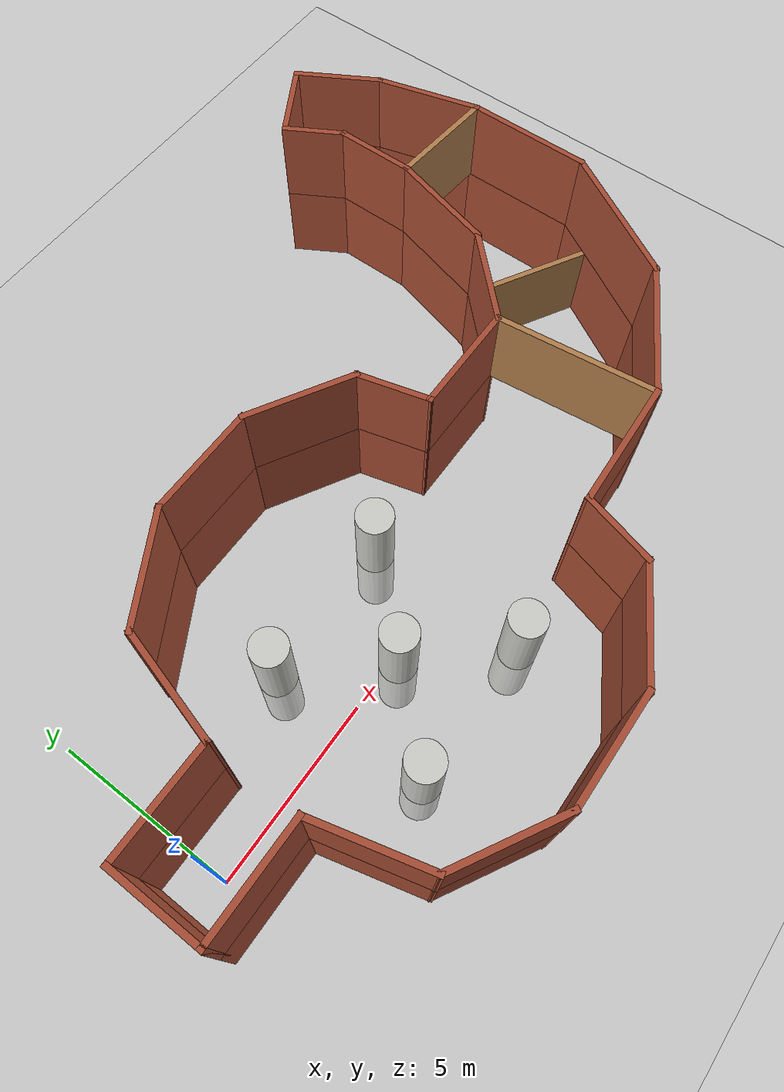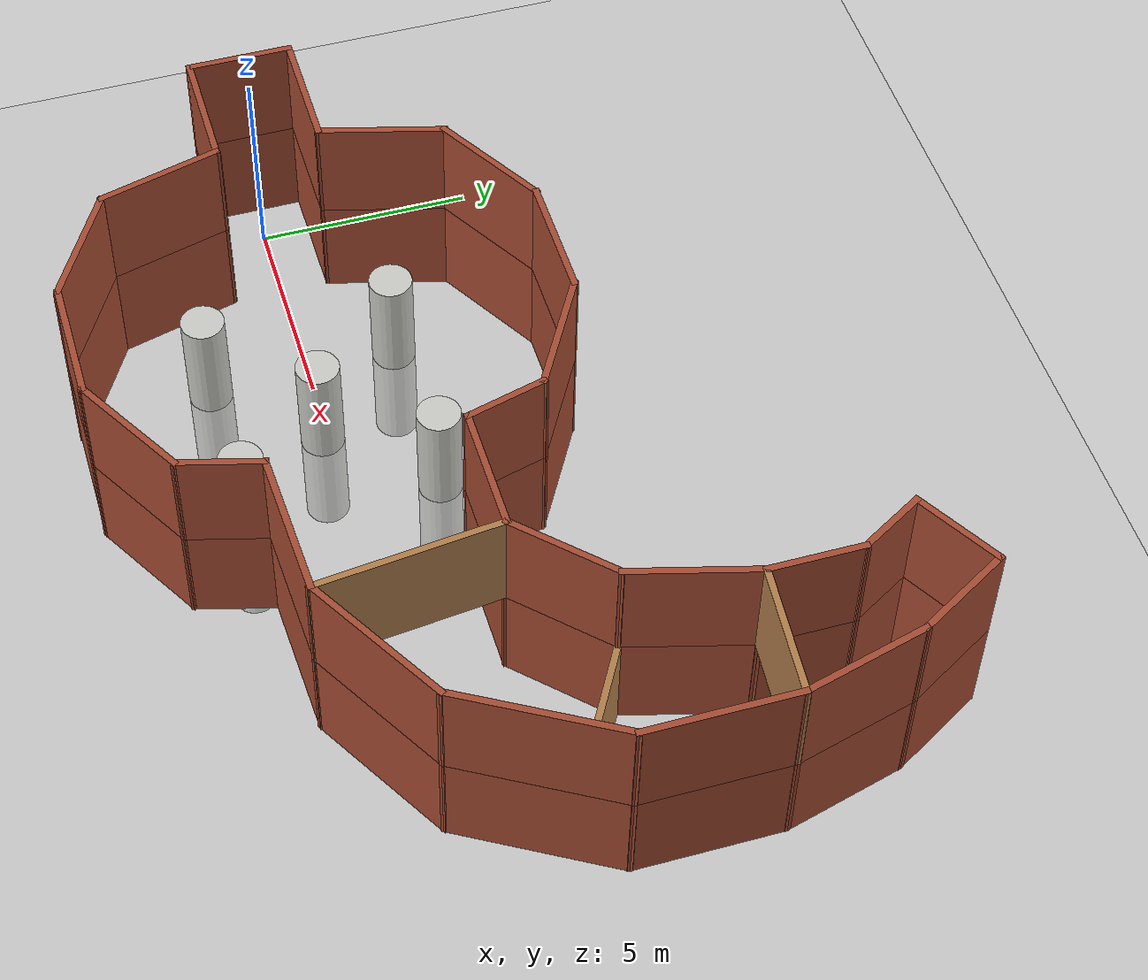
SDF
<?xml version="1.0" ?>
<sdf version="1.5">
  <world name="world_1">
    <!-- A global light source -->
    <include>
      <uri>model://sun</uri>
    </include>
    <!-- A ground plane -->
    <include>
      <uri>model://ground_plane</uri>
    </include>
    <include>
      <uri>model://asphalt_plane</uri>
    </include>
    <!-- ArUco Marker -->
    <include>
      <uri>model://aruco_visual_marker_0</uri>
      <pose>16.874 9.845 0.055 0 0 2.106</pose>
    </include>
    <!-- Obstacles -->
    <include>
      <uri>model://walls_2</uri>
      <pose>9.05 2.952 0 0 0 0.0</pose>
    </include>
    <include>
      <uri>model://obstacles_2</uri>
      <pose>6.5 -0.127 0 0 0 0.0</pose>
    </include>
    <physics name='default_physics' default='0' type='ode'>
      <gravity>0 0 -9.8066</gravity>
      <ode>
        <solver>
          <type>quick</type>
          <iters>10</iters>
          <sor>1.3</sor>
          <use_dynamic_moi_rescaling>0</use_dynamic_moi_rescaling>
        </solver>
        <constraints>
          <cfm>0</cfm>
          <erp>0.2</erp>
          <contact_max_correcting_vel>100</contact_max_correcting_vel>
          <contact_surface_layer>0.001</contact_surface_layer>
        </constraints>
      </ode>
      <max_step_size>0.004</max_step_size>
      <real_time_factor>1</real_time_factor>
      <real_time_update_rate>250</real_time_update_rate>
      <magnetic_field>6.0e-6 2.3e-5 -4.2e-5</magnetic_field>
    </physics>
  </world>
</sdf>

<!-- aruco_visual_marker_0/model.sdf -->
<sdf version='1.5'>
  <model name='aruco_visual_marker_0'>

    <link name='marker'>
      <pose frame=''>0 0 0 0 0 0</pose>
      <visual name='visual'>
        <geometry>
          <box>
            <size>1 1 1e-5</size>
          </box>
        </geometry>
        <material>
          <script>
            <uri>model://aruco_visual_marker_0/materials/scripts</uri>
            <uri>model://aruco_visual_marker_0/materials/textures</uri>
            <name>ArucoVisualMarker0/Marker</name>
          </script>
          <ambient>1 1 1 1</ambient>
          <diffuse>1 1 1 1</diffuse>
          <specular>0 0 0 1</specular>
          <emissive>1 1 1 0</emissive>
          <shader type='vertex'>
            <normal_map>__default__</normal_map>
          </shader>
        </material>
        <pose frame=''>0 0 0 0 -0 0</pose>
        <cast_shadows>1</cast_shadows>
        <transparency>0</transparency>
      </visual>
      <collision name='collision'>
        <laser_retro>0</laser_retro>
        <max_contacts>10</max_contacts>
        <pose frame=''>0 0 0 0 -0 0</pose>
        <geometry>
          <box>
            <size>1 1 1e-05</size>
          </box>
        </geometry>
      </collision>
    </link>

    <link name='marker_pad'>
      <pose frame='marker'>0 0 -1e-3 0 -0 0</pose>
      <visual name='visual'>
        <geometry>
          <box>
            <size>1.2 1.2 1e-5</size>
          </box>
        </geometry>
        <material>
          <lighting>1</lighting>
          <script>
            <uri>file://media/materials/scripts/gazebo.material</uri>
            <name>Gazebo/White</name>
          </script>
          <ambient>0.3 0.3 0.3 1</ambient>
          <diffuse>0.7 0.7 0.7 1</diffuse>
          <specular>0.01 0.01 0.01 1</specular>
          <emissive>1 1 1 0</emissive>
          <shader type='vertex'>
            <normal_map>__default__</normal_map>
          </shader>
        </material>
        <cast_shadows>1</cast_shadows>
        <transparency>0</transparency>
      </visual>
      <collision name='collision'>
        <laser_retro>0</laser_retro>
        <max_contacts>10</max_contacts>
        <pose frame=''>0 0 0 0 -0 0</pose>
        <geometry>
          <box>
            <size>1.2 1.2 1e-5</size>
          </box>
        </geometry>
      </collision>
    </link>

    <joint name='marker_JOINT_marker_pad' type='revolute'>
      <parent>marker</parent>
      <child>marker_pad</child>
      <pose frame=''>0 0 0 0 -0 0</pose>
      <axis>
        <xyz>0 0 0</xyz>
        <limit>
          <upper>0</upper>
          <lower>0</lower>
        </limit>
      </axis>
    </joint>

    <static>1</static>
    <allow_auto_disable>1</allow_auto_disable>

  </model>
</sdf>

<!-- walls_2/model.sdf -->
<sdf version='1.7'>
  <model name='walls_2'>
    <pose>8.92882 2.76252 0 0 -0 0</pose>
    <link name='Wall_0'>
      <collision name='Wall_0_Collision'>
        <geometry>
          <box>
            <size>2.5 0.15 2.5</size>
          </box>
        </geometry>
        <pose>0 0 1.25 0 -0 0</pose>
      </collision>
      <visual name='Wall_0_Visual'>
        <pose>0 0 1.25 0 -0 0</pose>
        <geometry>
          <box>
            <size>2.5 0.15 2.5</size>
          </box>
        </geometry>
        <material>
          <script>
            <uri>file://media/materials/scripts/gazebo.material</uri>
            <name>Gazebo/Bricks</name>
          </script>
          <ambient>1 1 1 1</ambient>
        </material>
        <meta>
          <layer>0</layer>
        </meta>
      </visual>
      <pose>-10.1188 -2.95752 0 0 -0 -1.5708</pose>
    </link>
    <link name='Wall_10'>
      <collision name='Wall_10_Collision'>
        <geometry>
          <box>
            <size>2 0.15 2.5</size>
          </box>
        </geometry>
        <pose>0 0 1.25 0 -0 0</pose>
      </collision>
      <visual name='Wall_10_Visual'>
        <pose>0 0 1.25 0 -0 0</pose>
        <geometry>
          <box>
            <size>2 0.15 2.5</size>
          </box>
        </geometry>
        <material>
          <script>
            <uri>file://media/materials/scripts/gazebo.material</uri>
            <name>Gazebo/Bricks</name>
          </script>
          <ambient>1 1 1 1</ambient>
        </material>
        <meta>
          <layer>0</layer>
        </meta>
      </visual>
      <pose>1.49456 0.076885 0 0 -0 -1.309</pose>
    </link>
    <link name='Wall_12'>
      <collision name='Wall_12_Collision'>
        <geometry>
          <box>
            <size>3 0.15 2.5</size>
          </box>
        </geometry>
        <pose>0 0 1.25 0 -0 0</pose>
      </collision>
      <visual name='Wall_12_Visual'>
        <pose>0 0 1.25 0 -0 0</pose>
        <geometry>
          <box>
            <size>3 0.15 2.5</size>
          </box>
        </geometry>
        <material>
          <script>
            <uri>file://media/materials/scripts/gazebo.material</uri>
            <name>Gazebo/Bricks</name>
          </script>
          <ambient>1 1 1 1</ambient>
        </material>
        <meta>
          <layer>0</layer>
        </meta>
      </visual>
      <pose>-6.90001 -5.50897 0 0 -0 -1.309</pose>
    </link>
    <link name='Wall_13'>
      <collision name='Wall_13_Collision'>
        <geometry>
          <box>
            <size>3 0.15 2.5</size>
          </box>
        </geometry>
        <pose>0 0 1.25 0 -0 0</pose>
      </collision>
      <visual name='Wall_13_Visual'>
        <pose>0 0 1.25 0 -0 0</pose>
        <geometry>
          <box>
            <size>3 0.15 2.5</size>
          </box>
        </geometry>
        <material>
          <script>
            <uri>file://media/materials/scripts/gazebo.material</uri>
            <name>Gazebo/Bricks</name>
          </script>
          <ambient>1 1 1 1</ambient>
        </material>
        <meta>
          <layer>0</layer>
        </meta>
      </visual>
      <pose>-5.2971 -7.59791 0 0 -0 -0.523599</pose>
    </link>
    <link name='Wall_14'>
      <collision name='Wall_14_Collision'>
        <geometry>
          <box>
            <size>3 0.15 2.5</size>
          </box>
        </geometry>
        <pose>0 0 1.25 0 -0 0</pose>
      </collision>
      <visual name='Wall_14_Visual'>
        <pose>0 0 1.25 0 -0 0</pose>
        <geometry>
          <box>
            <size>3 0.15 2.5</size>
          </box>
        </geometry>
        <material>
          <script>
            <uri>file://media/materials/scripts/gazebo.material</uri>
            <name>Gazebo/Bricks</name>
          </script>
          <ambient>1 1 1 1</ambient>
        </material>
        <meta>
          <layer>0</layer>
        </meta>
      </visual>
      <pose>-2.63802 -8.31041 0 0 -0 0</pose>
    </link>
    <link name='Wall_15'>
      <collision name='Wall_15_Collision'>
        <geometry>
          <box>
            <size>3 0.15 2.5</size>
          </box>
        </geometry>
        <pose>0 0 1.25 0 -0 0</pose>
      </collision>
      <visual name='Wall_15_Visual'>
        <pose>0 0 1.25 0 -0 0</pose>
        <geometry>
          <box>
            <size>3 0.15 2.5</size>
          </box>
        </geometry>
        <material>
          <script>
            <uri>file://media/materials/scripts/gazebo.material</uri>
            <name>Gazebo/Bricks</name>
          </script>
          <ambient>1 1 1 1</ambient>
        </material>
        <meta>
          <layer>0</layer>
        </meta>
      </visual>
      <pose>0.02107 -7.59791 0 0 -0 0.523599</pose>
    </link>
    <link name='Wall_16'>
      <collision name='Wall_16_Collision'>
        <geometry>
          <box>
            <size>2 0.15 2.5</size>
          </box>
        </geometry>
        <pose>0 0 1.25 0 -0 0</pose>
      </collision>
      <visual name='Wall_16_Visual'>
        <pose>0 0 1.25 0 -0 0</pose>
        <geometry>
          <box>
            <size>2 0.15 2.5</size>
          </box>
        </geometry>
        <material>
          <script>
            <uri>file://media/materials/scripts/gazebo.material</uri>
            <name>Gazebo/Bricks</name>
          </script>
          <ambient>1 1 1 1</ambient>
        </material>
        <meta>
          <layer>0</layer>
        </meta>
      </visual>
      <pose>1.49456 -5.99193 0 0 -0 1.309</pose>
    </link>
    <link name='Wall_18'>
      <collision name='Wall_18_Collision'>
        <geometry>
          <box>
            <size>3 0.15 2.5</size>
          </box>
        </geometry>
        <pose>0 0 1.25 0 -0 0</pose>
      </collision>
      <visual name='Wall_18_Visual'>
        <pose>0 0 1.25 0 -0 0</pose>
        <geometry>
          <box>
            <size>3 0.15 2.5</size>
          </box>
        </geometry>
        <material>
          <script>
            <uri>file://media/materials/scripts/gazebo.material</uri>
            <name>Gazebo/Bricks</name>
          </script>
          <ambient>1 1 1 1</ambient>
        </material>
        <meta>
          <layer>0</layer>
        </meta>
      </visual>
      <pose>3.15897 -0.816596 0 0 -0 0</pose>
    </link>
    <link name='Wall_19'>
      <collision name='Wall_19_Collision'>
        <geometry>
          <box>
            <size>2.75 0.15 2.5</size>
          </box>
        </geometry>
        <pose>0 0 1.25 0 -0 0</pose>
      </collision>
      <visual name='Wall_19_Visual'>
        <pose>0 0 1.25 0 -0 0</pose>
        <geometry>
          <box>
            <size>2.75 0.15 2.5</size>
          </box>
        </geometry>
        <material>
          <script>
            <uri>file://media/materials/scripts/gazebo.material</uri>
            <name>Gazebo/Bricks</name>
          </script>
          <ambient>1 1 1 1</ambient>
        </material>
        <meta>
          <layer>0</layer>
        </meta>
      </visual>
      <pose>5.50321 0.102643 0 0 -0 0.785398</pose>
    </link>
    <link name='Wall_2'>
      <collision name='Wall_2_Collision'>
        <geometry>
          <box>
            <size>3 0.15 2.5</size>
          </box>
        </geometry>
        <pose>0 0 1.25 0 -0 0</pose>
      </collision>
      <visual name='Wall_2_Visual'>
        <pose>0 0 1.25 0 -0 0</pose>
        <geometry>
          <box>
            <size>3 0.15 2.5</size>
          </box>
        </geometry>
        <material>
          <script>
            <uri>file://media/materials/scripts/gazebo.material</uri>
            <name>Gazebo/Bricks</name>
          </script>
          <ambient>1 1 1 1</ambient>
        </material>
        <meta>
          <layer>0</layer>
        </meta>
      </visual>
      <pose>-8.69382 -1.78252 0 0 -0 0</pose>
    </link>
    <link name='Wall_20'>
      <collision name='Wall_20_Collision'>
        <geometry>
          <box>
            <size>3 0.15 2.5</size>
          </box>
        </geometry>
        <pose>0 0 1.25 0 -0 0</pose>
      </collision>
      <visual name='Wall_20_Visual'>
        <pose>0 0 1.25 0 -0 0</pose>
        <geometry>
          <box>
            <size>3 0.15 2.5</size>
          </box>
        </geometry>
        <material>
          <script>
            <uri>file://media/materials/scripts/gazebo.material</uri>
            <name>Gazebo/Bricks</name>
          </script>
          <ambient>1 1 1 1</ambient>
        </material>
        <meta>
          <layer>0</layer>
        </meta>
      </visual>
      <pose>6.79127 2.39833 0 0 -0 1.309</pose>
    </link>
    <link name='Wall_21'>
      <collision name='Wall_21_Collision'>
        <geometry>
          <box>
            <size>2.25 0.15 2.5</size>
          </box>
        </geometry>
        <pose>0 0 1.25 0 -0 0</pose>
      </collision>
      <visual name='Wall_21_Visual'>
        <pose>0 0 1.25 0 -0 0</pose>
        <geometry>
          <box>
            <size>2.25 0.15 2.5</size>
          </box>
        </geometry>
        <material>
          <script>
            <uri>file://media/materials/scripts/gazebo.material</uri>
            <name>Gazebo/Bricks</name>
          </script>
          <ambient>1 1 1 1</ambient>
        </material>
        <meta>
          <layer>0</layer>
        </meta>
      </visual>
      <pose>7.16008 4.82477 0 0 -0 1.5708</pose>
    </link>
    <link name='Wall_22'>
      <collision name='Wall_22_Collision'>
        <geometry>
          <box>
            <size>1.75 0.15 2.5</size>
          </box>
        </geometry>
        <pose>0 0 1.25 0 -0 0</pose>
      </collision>
      <visual name='Wall_22_Visual'>
        <pose>0 0 1.25 0 -0 0</pose>
        <geometry>
          <box>
            <size>1.75 0.15 2.5</size>
          </box>
        </geometry>
        <material>
          <script>
            <uri>file://media/materials/scripts/gazebo.material</uri>
            <name>Gazebo/Bricks</name>
          </script>
          <ambient>1 1 1 1</ambient>
        </material>
        <meta>
          <layer>0</layer>
        </meta>
      </visual>
      <pose>6.76008 6.56759 0 0 -0 2.0944</pose>
    </link>
    <link name='Wall_23'>
      <collision name='Wall_23_Collision'>
        <geometry>
          <box>
            <size>2.25 0.15 2.5</size>
          </box>
        </geometry>
        <pose>0 0 1.25 0 -0 0</pose>
      </collision>
      <visual name='Wall_23_Visual'>
        <pose>0 0 1.25 0 -0 0</pose>
        <geometry>
          <box>
            <size>2.25 0.15 2.5</size>
          </box>
        </geometry>
        <material>
          <script>
            <uri>file://media/materials/scripts/gazebo.material</uri>
            <name>Gazebo/Bricks</name>
          </script>
          <ambient>1 1 1 1</ambient>
        </material>
        <meta>
          <layer>0</layer>
        </meta>
      </visual>
      <pose>7.26941 7.78541 0 0 -0 0.523599</pose>
    </link>
    <link name='Wall_27'>
      <collision name='Wall_27_Collision'>
        <geometry>
          <box>
            <size>2.5 0.15 2.5</size>
          </box>
        </geometry>
        <pose>0 0 1.25 0 -0 0</pose>
      </collision>
      <visual name='Wall_27_Visual'>
        <pose>0 0 1.25 0 -0 0</pose>
        <geometry>
          <box>
            <size>2.5 0.15 2.5</size>
          </box>
        </geometry>
        <material>
          <script>
            <uri>file://media/materials/scripts/gazebo.material</uri>
            <name>Gazebo/Bricks</name>
          </script>
          <ambient>1 1 1 1</ambient>
        </material>
        <meta>
          <layer>0</layer>
        </meta>
      </visual>
      <pose>8.76624 7.29283 0 0 -0 -1.0472</pose>
    </link>
    <link name='Wall_28'>
      <collision name='Wall_28_Collision'>
        <geometry>
          <box>
            <size>3 0.15 2.5</size>
          </box>
        </geometry>
        <pose>0 0 1.25 0 -0 0</pose>
      </collision>
      <visual name='Wall_28_Visual'>
        <pose>0 0 1.25 0 -0 0</pose>
        <geometry>
          <box>
            <size>3 0.15 2.5</size>
          </box>
        </geometry>
        <material>
          <script>
            <uri>file://media/materials/scripts/gazebo.material</uri>
            <name>Gazebo/Bricks</name>
          </script>
          <ambient>1 1 1 1</ambient>
        </material>
        <meta>
          <layer>0</layer>
        </meta>
      </visual>
      <pose>9.72255 4.89881 0 0 -0 -1.309</pose>
    </link>
    <link name='Wall_29'>
      <collision name='Wall_29_Collision'>
        <geometry>
          <box>
            <size>3.5 0.15 2.5</size>
          </box>
        </geometry>
        <pose>0 0 1.25 0 -0 0</pose>
      </collision>
      <visual name='Wall_29_Visual'>
        <pose>0 0 1.25 0 -0 0</pose>
        <geometry>
          <box>
            <size>3.5 0.15 2.5</size>
          </box>
        </geometry>
        <material>
          <script>
            <uri>file://media/materials/scripts/gazebo.material</uri>
            <name>Gazebo/Bricks</name>
          </script>
          <ambient>1 1 1 1</ambient>
        </material>
        <meta>
          <layer>0</layer>
        </meta>
      </visual>
      <pose>10.0914 1.84736 0 0 -0 -1.5708</pose>
    </link>
    <link name='Wall_30'>
      <collision name='Wall_30_Collision'>
        <geometry>
          <box>
            <size>4 0.15 2.5</size>
          </box>
        </geometry>
        <pose>0 0 1.25 0 -0 0</pose>
      </collision>
      <visual name='Wall_30_Visual'>
        <pose>0 0 1.25 0 -0 0</pose>
        <geometry>
          <box>
            <size>4 0.15 2.5</size>
          </box>
        </geometry>
        <material>
          <script>
            <uri>file://media/materials/scripts/gazebo.material</uri>
            <name>Gazebo/Bricks</name>
          </script>
          <ambient>1 1 1 1</ambient>
        </material>
        <meta>
          <layer>0</layer>
        </meta>
      </visual>
      <pose>9.12887 -1.49474 0 0 -0 -2.0944</pose>
    </link>
    <link name='Wall_31'>
      <collision name='Wall_31_Collision'>
        <geometry>
          <box>
            <size>3.75 0.15 2.5</size>
          </box>
        </geometry>
        <pose>0 0 1.25 0 -0 0</pose>
      </collision>
      <visual name='Wall_31_Visual'>
        <pose>0 0 1.25 0 -0 0</pose>
        <geometry>
          <box>
            <size>3.75 0.15 2.5</size>
          </box>
        </geometry>
        <material>
          <script>
            <uri>file://media/materials/scripts/gazebo.material</uri>
            <name>Gazebo/Bricks</name>
          </script>
          <ambient>1 1 1 1</ambient>
        </material>
        <meta>
          <layer>0</layer>
        </meta>
      </visual>
      <pose>6.60752 -4.06184 0 0 -0 -2.61799</pose>
    </link>
    <link name='Wall_32'>
      <collision name='Wall_32_Collision'>
        <geometry>
          <box>
            <size>3.46752 0.15 2.5</size>
          </box>
        </geometry>
        <pose>0 0 1.25 0 -0 0</pose>
      </collision>
      <visual name='Wall_32_Visual'>
        <pose>0 0 1.25 0 -0 0</pose>
        <geometry>
          <box>
            <size>3.46752 0.15 2.5</size>
          </box>
        </geometry>
        <material>
          <script>
            <uri>file://media/materials/scripts/gazebo.material</uri>
            <name>Gazebo/Bricks</name>
          </script>
          <ambient>1 1 1 1</ambient>
        </material>
        <meta>
          <layer>0</layer>
        </meta>
      </visual>
      <pose>3.39133 -5.03014 0 0 -0 -3.1004</pose>
    </link>
    <link name='Wall_38'>
      <collision name='Wall_38_Collision'>
        <geometry>
          <box>
            <size>3.75 0.15 2.5</size>
          </box>
        </geometry>
        <pose>0 0 1.25 0 -0 0</pose>
      </collision>
      <visual name='Wall_38_Visual'>
        <pose>0 0 1.25 0 -0 0</pose>
        <geometry>
          <box>
            <size>3.75 0.15 2.5</size>
          </box>
        </geometry>
        <material>
          <script>
            <uri>file://media/materials/scripts/gazebo.material</uri>
            <name>Gazebo/Wood</name>
          </script>
          <ambient>1 1 1 1</ambient>
        </material>
        <meta>
          <layer>0</layer>
        </meta>
      </visual>
      <pose>7.9813 0.121882 0 0 -0 -0.523599</pose>
    </link>
    <link name='Wall_4'>
      <collision name='Wall_4_Collision'>
        <geometry>
          <box>
            <size>3 0.15 2.5</size>
          </box>
        </geometry>
        <pose>0 0 1.25 0 -0 0</pose>
      </collision>
      <visual name='Wall_4_Visual'>
        <pose>0 0 1.25 0 -0 0</pose>
        <geometry>
          <box>
            <size>3 0.15 2.5</size>
          </box>
        </geometry>
        <material>
          <script>
            <uri>file://media/materials/scripts/gazebo.material</uri>
            <name>Gazebo/Bricks</name>
          </script>
          <ambient>1 1 1 1</ambient>
        </material>
        <meta>
          <layer>0</layer>
        </meta>
      </visual>
      <pose>-8.69382 -4.13252 0 0 -0 0</pose>
    </link>
    <link name='Wall_40'>
      <collision name='Wall_40_Collision'>
        <geometry>
          <box>
            <size>2.5 0.15 2.5</size>
          </box>
        </geometry>
        <pose>0 0 1.25 0 -0 0</pose>
      </collision>
      <visual name='Wall_40_Visual'>
        <pose>0 0 1.25 0 -0 0</pose>
        <geometry>
          <box>
            <size>2.5 0.15 2.5</size>
          </box>
        </geometry>
        <material>
          <script>
            <uri>file://media/materials/scripts/gazebo.material</uri>
            <name>Gazebo/Bricks</name>
          </script>
          <ambient>1 1 1 1</ambient>
        </material>
        <meta>
          <layer>1</layer>
        </meta>
      </visual>
      <pose>-10.1188 -2.95752 2.5 0 -0 -1.5708</pose>
    </link>
    <link name='Wall_41'>
      <collision name='Wall_41_Collision'>
        <geometry>
          <box>
            <size>3 0.15 2.5</size>
          </box>
        </geometry>
        <pose>0 0 1.25 0 -0 0</pose>
      </collision>
      <visual name='Wall_41_Visual'>
        <pose>0 0 1.25 0 -0 0</pose>
        <geometry>
          <box>
            <size>3 0.15 2.5</size>
          </box>
        </geometry>
        <material>
          <script>
            <uri>file://media/materials/scripts/gazebo.material</uri>
            <name>Gazebo/Bricks</name>
          </script>
          <ambient>1 1 1 1</ambient>
        </material>
        <meta>
          <layer>1</layer>
        </meta>
      </visual>
      <pose>-8.69382 -1.78252 2.5 0 -0 0</pose>
    </link>
    <link name='Wall_42'>
      <collision name='Wall_42_Collision'>
        <geometry>
          <box>
            <size>3 0.15 2.5</size>
          </box>
        </geometry>
        <pose>0 0 1.25 0 -0 0</pose>
      </collision>
      <visual name='Wall_42_Visual'>
        <pose>0 0 1.25 0 -0 0</pose>
        <geometry>
          <box>
            <size>3 0.15 2.5</size>
          </box>
        </geometry>
        <material>
          <script>
            <uri>file://media/materials/scripts/gazebo.material</uri>
            <name>Gazebo/Bricks</name>
          </script>
          <ambient>1 1 1 1</ambient>
        </material>
        <meta>
          <layer>1</layer>
        </meta>
      </visual>
      <pose>-8.69382 -4.13252 2.5 0 -0 0</pose>
    </link>
    <link name='Wall_43'>
      <collision name='Wall_43_Collision'>
        <geometry>
          <box>
            <size>3 0.15 2.5</size>
          </box>
        </geometry>
        <pose>0 0 1.25 0 -0 0</pose>
      </collision>
      <visual name='Wall_43_Visual'>
        <pose>0 0 1.25 0 -0 0</pose>
        <geometry>
          <box>
            <size>3 0.15 2.5</size>
          </box>
        </geometry>
        <material>
          <script>
            <uri>file://media/materials/scripts/gazebo.material</uri>
            <name>Gazebo/Bricks</name>
          </script>
          <ambient>1 1 1 1</ambient>
        </material>
        <meta>
          <layer>1</layer>
        </meta>
      </visual>
      <pose>-6.90001 -0.406077 2.5 0 -0 1.309</pose>
    </link>
    <link name='Wall_44'>
      <collision name='Wall_44_Collision'>
        <geometry>
          <box>
            <size>3 0.15 2.5</size>
          </box>
        </geometry>
        <pose>0 0 1.25 0 -0 0</pose>
      </collision>
      <visual name='Wall_44_Visual'>
        <pose>0 0 1.25 0 -0 0</pose>
        <geometry>
          <box>
            <size>3 0.15 2.5</size>
          </box>
        </geometry>
        <material>
          <script>
            <uri>file://media/materials/scripts/gazebo.material</uri>
            <name>Gazebo/Bricks</name>
          </script>
          <ambient>1 1 1 1</ambient>
        </material>
        <meta>
          <layer>1</layer>
        </meta>
      </visual>
      <pose>-5.2971 1.68287 2.5 0 -0 0.523599</pose>
    </link>
    <link name='Wall_45'>
      <collision name='Wall_45_Collision'>
        <geometry>
          <box>
            <size>3 0.15 2.5</size>
          </box>
        </geometry>
        <pose>0 0 1.25 0 -0 0</pose>
      </collision>
      <visual name='Wall_45_Visual'>
        <pose>0 0 1.25 0 -0 0</pose>
        <geometry>
          <box>
            <size>3 0.15 2.5</size>
          </box>
        </geometry>
        <material>
          <script>
            <uri>file://media/materials/scripts/gazebo.material</uri>
            <name>Gazebo/Bricks</name>
          </script>
          <ambient>1 1 1 1</ambient>
        </material>
        <meta>
          <layer>1</layer>
        </meta>
      </visual>
      <pose>-2.63802 2.39537 2.5 0 -0 0</pose>
    </link>
    <link name='Wall_46'>
      <collision name='Wall_46_Collision'>
        <geometry>
          <box>
            <size>3 0.15 2.5</size>
          </box>
        </geometry>
        <pose>0 0 1.25 0 -0 0</pose>
      </collision>
      <visual name='Wall_46_Visual'>
        <pose>0 0 1.25 0 -0 0</pose>
        <geometry>
          <box>
            <size>3 0.15 2.5</size>
          </box>
        </geometry>
        <material>
          <script>
            <uri>file://media/materials/scripts/gazebo.material</uri>
            <name>Gazebo/Bricks</name>
          </script>
          <ambient>1 1 1 1</ambient>
        </material>
        <meta>
          <layer>1</layer>
        </meta>
      </visual>
      <pose>0.02107 1.68287 2.5 0 -0 -0.523599</pose>
    </link>
    <link name='Wall_47'>
      <collision name='Wall_47_Collision'>
        <geometry>
          <box>
            <size>2 0.15 2.5</size>
          </box>
        </geometry>
        <pose>0 0 1.25 0 -0 0</pose>
      </collision>
      <visual name='Wall_47_Visual'>
        <pose>0 0 1.25 0 -0 0</pose>
        <geometry>
          <box>
            <size>2 0.15 2.5</size>
          </box>
        </geometry>
        <material>
          <script>
            <uri>file://media/materials/scripts/gazebo.material</uri>
            <name>Gazebo/Bricks</name>
          </script>
          <ambient>1 1 1 1</ambient>
        </material>
        <meta>
          <layer>1</layer>
        </meta>
      </visual>
      <pose>1.49456 0.076886 2.5 0 -0 -1.309</pose>
    </link>
    <link name='Wall_48'>
      <collision name='Wall_48_Collision'>
        <geometry>
          <box>
            <size>3 0.15 2.5</size>
          </box>
        </geometry>
        <pose>0 0 1.25 0 -0 0</pose>
      </collision>
      <visual name='Wall_48_Visual'>
        <pose>0 0 1.25 0 -0 0</pose>
        <geometry>
          <box>
            <size>3 0.15 2.5</size>
          </box>
        </geometry>
        <material>
          <script>
            <uri>file://media/materials/scripts/gazebo.material</uri>
            <name>Gazebo/Bricks</name>
          </script>
          <ambient>1 1 1 1</ambient>
        </material>
        <meta>
          <layer>1</layer>
        </meta>
      </visual>
      <pose>-6.90001 -5.50897 2.5 0 -0 -1.309</pose>
    </link>
    <link name='Wall_49'>
      <collision name='Wall_49_Collision'>
        <geometry>
          <box>
            <size>3 0.15 2.5</size>
          </box>
        </geometry>
        <pose>0 0 1.25 0 -0 0</pose>
      </collision>
      <visual name='Wall_49_Visual'>
        <pose>0 0 1.25 0 -0 0</pose>
        <geometry>
          <box>
            <size>3 0.15 2.5</size>
          </box>
        </geometry>
        <material>
          <script>
            <uri>file://media/materials/scripts/gazebo.material</uri>
            <name>Gazebo/Bricks</name>
          </script>
          <ambient>1 1 1 1</ambient>
        </material>
        <meta>
          <layer>1</layer>
        </meta>
      </visual>
      <pose>-5.2971 -7.59791 2.5 0 -0 -0.523599</pose>
    </link>
    <link name='Wall_50'>
      <collision name='Wall_50_Collision'>
        <geometry>
          <box>
            <size>3 0.15 2.5</size>
          </box>
        </geometry>
        <pose>0 0 1.25 0 -0 0</pose>
      </collision>
      <visual name='Wall_50_Visual'>
        <pose>0 0 1.25 0 -0 0</pose>
        <geometry>
          <box>
            <size>3 0.15 2.5</size>
          </box>
        </geometry>
        <material>
          <script>
            <uri>file://media/materials/scripts/gazebo.material</uri>
            <name>Gazebo/Bricks</name>
          </script>
          <ambient>1 1 1 1</ambient>
        </material>
        <meta>
          <layer>1</layer>
        </meta>
      </visual>
      <pose>-2.63802 -8.31041 2.5 0 -0 0</pose>
    </link>
    <link name='Wall_51'>
      <collision name='Wall_51_Collision'>
        <geometry>
          <box>
            <size>3 0.15 2.5</size>
          </box>
        </geometry>
        <pose>0 0 1.25 0 -0 0</pose>
      </collision>
      <visual name='Wall_51_Visual'>
        <pose>0 0 1.25 0 -0 0</pose>
        <geometry>
          <box>
            <size>3 0.15 2.5</size>
          </box>
        </geometry>
        <material>
          <script>
            <uri>file://media/materials/scripts/gazebo.material</uri>
            <name>Gazebo/Bricks</name>
          </script>
          <ambient>1 1 1 1</ambient>
        </material>
        <meta>
          <layer>1</layer>
        </meta>
      </visual>
      <pose>0.02107 -7.59791 2.5 0 -0 0.523599</pose>
    </link>
    <link name='Wall_52'>
      <collision name='Wall_52_Collision'>
        <geometry>
          <box>
            <size>2 0.15 2.5</size>
          </box>
        </geometry>
        <pose>0 0 1.25 0 -0 0</pose>
      </collision>
      <visual name='Wall_52_Visual'>
        <pose>0 0 1.25 0 -0 0</pose>
        <geometry>
          <box>
            <size>2 0.15 2.5</size>
          </box>
        </geometry>
        <material>
          <script>
            <uri>file://media/materials/scripts/gazebo.material</uri>
            <name>Gazebo/Bricks</name>
          </script>
          <ambient>1 1 1 1</ambient>
        </material>
        <meta>
          <layer>1</layer>
        </meta>
      </visual>
      <pose>1.49456 -5.99193 2.5 0 -0 1.309</pose>
    </link>
    <link name='Wall_53'>
      <collision name='Wall_53_Collision'>
        <geometry>
          <box>
            <size>3 0.15 2.5</size>
          </box>
        </geometry>
        <pose>0 0 1.25 0 -0 0</pose>
      </collision>
      <visual name='Wall_53_Visual'>
        <pose>0 0 1.25 0 -0 0</pose>
        <geometry>
          <box>
            <size>3 0.15 2.5</size>
          </box>
        </geometry>
        <material>
          <script>
            <uri>file://media/materials/scripts/gazebo.material</uri>
            <name>Gazebo/Bricks</name>
          </script>
          <ambient>1 1 1 1</ambient>
        </material>
        <meta>
          <layer>1</layer>
        </meta>
      </visual>
      <pose>3.15897 -0.816596 2.5 0 -0 0</pose>
    </link>
    <link name='Wall_54'>
      <collision name='Wall_54_Collision'>
        <geometry>
          <box>
            <size>2.75 0.15 2.5</size>
          </box>
        </geometry>
        <pose>0 0 1.25 0 -0 0</pose>
      </collision>
      <visual name='Wall_54_Visual'>
        <pose>0 0 1.25 0 -0 0</pose>
        <geometry>
          <box>
            <size>2.75 0.15 2.5</size>
          </box>
        </geometry>
        <material>
          <script>
            <uri>file://media/materials/scripts/gazebo.material</uri>
            <name>Gazebo/Bricks</name>
          </script>
          <ambient>1 1 1 1</ambient>
        </material>
        <meta>
          <layer>1</layer>
        </meta>
      </visual>
      <pose>5.50321 0.102643 2.5 0 -0 0.785398</pose>
    </link>
    <link name='Wall_55'>
      <collision name='Wall_55_Collision'>
        <geometry>
          <box>
            <size>3 0.15 2.5</size>
          </box>
        </geometry>
        <pose>0 0 1.25 0 -0 0</pose>
      </collision>
      <visual name='Wall_55_Visual'>
        <pose>0 0 1.25 0 -0 0</pose>
        <geometry>
          <box>
            <size>3 0.15 2.5</size>
          </box>
        </geometry>
        <material>
          <script>
            <uri>file://media/materials/scripts/gazebo.material</uri>
            <name>Gazebo/Bricks</name>
          </script>
          <ambient>1 1 1 1</ambient>
        </material>
        <meta>
          <layer>1</layer>
        </meta>
      </visual>
      <pose>6.79127 2.39833 2.5 0 -0 1.309</pose>
    </link>
    <link name='Wall_56'>
      <collision name='Wall_56_Collision'>
        <geometry>
          <box>
            <size>2.25 0.15 2.5</size>
          </box>
        </geometry>
        <pose>0 0 1.25 0 -0 0</pose>
      </collision>
      <visual name='Wall_56_Visual'>
        <pose>0 0 1.25 0 -0 0</pose>
        <geometry>
          <box>
            <size>2.25 0.15 2.5</size>
          </box>
        </geometry>
        <material>
          <script>
            <uri>file://media/materials/scripts/gazebo.material</uri>
            <name>Gazebo/Bricks</name>
          </script>
          <ambient>1 1 1 1</ambient>
        </material>
        <meta>
          <layer>1</layer>
        </meta>
      </visual>
      <pose>7.16008 4.82477 2.5 0 -0 1.5708</pose>
    </link>
    <link name='Wall_57'>
      <collision name='Wall_57_Collision'>
        <geometry>
          <box>
            <size>1.75 0.15 2.5</size>
          </box>
        </geometry>
        <pose>0 0 1.25 0 -0 0</pose>
      </collision>
      <visual name='Wall_57_Visual'>
        <pose>0 0 1.25 0 -0 0</pose>
        <geometry>
          <box>
            <size>1.75 0.15 2.5</size>
          </box>
        </geometry>
        <material>
          <script>
            <uri>file://media/materials/scripts/gazebo.material</uri>
            <name>Gazebo/Bricks</name>
          </script>
          <ambient>1 1 1 1</ambient>
        </material>
        <meta>
          <layer>1</layer>
        </meta>
      </visual>
      <pose>6.76008 6.56759 2.5 0 -0 2.0944</pose>
    </link>
    <link name='Wall_58'>
      <collision name='Wall_58_Collision'>
        <geometry>
          <box>
            <size>2.25 0.15 2.5</size>
          </box>
        </geometry>
        <pose>0 0 1.25 0 -0 0</pose>
      </collision>
      <visual name='Wall_58_Visual'>
        <pose>0 0 1.25 0 -0 0</pose>
        <geometry>
          <box>
            <size>2.25 0.15 2.5</size>
          </box>
        </geometry>
        <material>
          <script>
            <uri>file://media/materials/scripts/gazebo.material</uri>
            <name>Gazebo/Bricks</name>
          </script>
          <ambient>1 1 1 1</ambient>
        </material>
        <meta>
          <layer>1</layer>
        </meta>
      </visual>
      <pose>7.26941 7.78541 2.5 0 -0 0.523599</pose>
    </link>
    <link name='Wall_59'>
      <collision name='Wall_59_Collision'>
        <geometry>
          <box>
            <size>2.5 0.15 2.5</size>
          </box>
        </geometry>
        <pose>0 0 1.25 0 -0 0</pose>
      </collision>
      <visual name='Wall_59_Visual'>
        <pose>0 0 1.25 0 -0 0</pose>
        <geometry>
          <box>
            <size>2.5 0.15 2.5</size>
          </box>
        </geometry>
        <material>
          <script>
            <uri>file://media/materials/scripts/gazebo.material</uri>
            <name>Gazebo/Bricks</name>
          </script>
          <ambient>1 1 1 1</ambient>
        </material>
        <meta>
          <layer>1</layer>
        </meta>
      </visual>
      <pose>8.76624 7.29283 2.5 0 -0 -1.0472</pose>
    </link>
    <link name='Wall_6'>
      <collision name='Wall_6_Collision'>
        <geometry>
          <box>
            <size>3 0.15 2.5</size>
          </box>
        </geometry>
        <pose>0 0 1.25 0 -0 0</pose>
      </collision>
      <visual name='Wall_6_Visual'>
        <pose>0 0 1.25 0 -0 0</pose>
        <geometry>
          <box>
            <size>3 0.15 2.5</size>
          </box>
        </geometry>
        <material>
          <script>
            <uri>file://media/materials/scripts/gazebo.material</uri>
            <name>Gazebo/Bricks</name>
          </script>
          <ambient>1 1 1 1</ambient>
        </material>
        <meta>
          <layer>0</layer>
        </meta>
      </visual>
      <pose>-6.90001 -0.406077 0 0 -0 1.309</pose>
    </link>
    <link name='Wall_60'>
      <collision name='Wall_60_Collision'>
        <geometry>
          <box>
            <size>3 0.15 2.5</size>
          </box>
        </geometry>
        <pose>0 0 1.25 0 -0 0</pose>
      </collision>
      <visual name='Wall_60_Visual'>
        <pose>0 0 1.25 0 -0 0</pose>
        <geometry>
          <box>
            <size>3 0.15 2.5</size>
          </box>
        </geometry>
        <material>
          <script>
            <uri>file://media/materials/scripts/gazebo.material</uri>
            <name>Gazebo/Bricks</name>
          </script>
          <ambient>1 1 1 1</ambient>
        </material>
        <meta>
          <layer>1</layer>
        </meta>
      </visual>
      <pose>9.72255 4.89881 2.5 0 -0 -1.309</pose>
    </link>
    <link name='Wall_61'>
      <collision name='Wall_61_Collision'>
        <geometry>
          <box>
            <size>3.5 0.15 2.5</size>
          </box>
        </geometry>
        <pose>0 0 1.25 0 -0 0</pose>
      </collision>
      <visual name='Wall_61_Visual'>
        <pose>0 0 1.25 0 -0 0</pose>
        <geometry>
          <box>
            <size>3.5 0.15 2.5</size>
          </box>
        </geometry>
        <material>
          <script>
            <uri>file://media/materials/scripts/gazebo.material</uri>
            <name>Gazebo/Bricks</name>
          </script>
          <ambient>1 1 1 1</ambient>
        </material>
        <meta>
          <layer>1</layer>
        </meta>
      </visual>
      <pose>10.0914 1.84736 2.5 0 -0 -1.5708</pose>
    </link>
    <link name='Wall_62'>
      <collision name='Wall_62_Collision'>
        <geometry>
          <box>
            <size>4 0.15 2.5</size>
          </box>
        </geometry>
        <pose>0 0 1.25 0 -0 0</pose>
      </collision>
      <visual name='Wall_62_Visual'>
        <pose>0 0 1.25 0 -0 0</pose>
        <geometry>
          <box>
            <size>4 0.15 2.5</size>
          </box>
        </geometry>
        <material>
          <script>
            <uri>file://media/materials/scripts/gazebo.material</uri>
            <name>Gazebo/Bricks</name>
          </script>
          <ambient>1 1 1 1</ambient>
        </material>
        <meta>
          <layer>1</layer>
        </meta>
      </visual>
      <pose>9.12887 -1.49474 2.5 0 -0 -2.0944</pose>
    </link>
    <link name='Wall_63'>
      <collision name='Wall_63_Collision'>
        <geometry>
          <box>
            <size>3.75 0.15 2.5</size>
          </box>
        </geometry>
        <pose>0 0 1.25 0 -0 0</pose>
      </collision>
      <visual name='Wall_63_Visual'>
        <pose>0 0 1.25 0 -0 0</pose>
        <geometry>
          <box>
            <size>3.75 0.15 2.5</size>
          </box>
        </geometry>
        <material>
          <script>
            <uri>file://media/materials/scripts/gazebo.material</uri>
            <name>Gazebo/Bricks</name>
          </script>
          <ambient>1 1 1 1</ambient>
        </material>
        <meta>
          <layer>1</layer>
        </meta>
      </visual>
      <pose>6.60752 -4.06184 2.5 0 -0 -2.61799</pose>
    </link>
    <link name='Wall_64'>
      <collision name='Wall_64_Collision'>
        <geometry>
          <box>
            <size>3.46752 0.15 2.5</size>
          </box>
        </geometry>
        <pose>0 0 1.25 0 -0 0</pose>
      </collision>
      <visual name='Wall_64_Visual'>
        <pose>0 0 1.25 0 -0 0</pose>
        <geometry>
          <box>
            <size>3.46752 0.15 2.5</size>
          </box>
        </geometry>
        <material>
          <script>
            <uri>file://media/materials/scripts/gazebo.material</uri>
            <name>Gazebo/Bricks</name>
          </script>
          <ambient>1 1 1 1</ambient>
        </material>
        <meta>
          <layer>1</layer>
        </meta>
      </visual>
      <pose>3.39133 -5.03014 2.5 0 -0 -3.1004</pose>
    </link>
    <link name='Wall_66'>
      <collision name='Wall_66_Collision'>
        <geometry>
          <box>
            <size>4.32121 0.15 2.5</size>
          </box>
        </geometry>
        <pose>0 0 1.25 0 -0 0</pose>
      </collision>
      <visual name='Wall_66_Visual'>
        <pose>0 0 1.25 0 -0 0</pose>
        <geometry>
          <box>
            <size>4.32121 0.15 2.5</size>
          </box>
        </geometry>
        <material>
          <script>
            <uri>file://media/materials/scripts/gazebo.material</uri>
            <name>Gazebo/Wood</name>
          </script>
          <ambient>1 1 1 1</ambient>
        </material>
        <meta>
          <layer>1</layer>
        </meta>
      </visual>
      <pose>4.81633 -2.88922 2.5 0 -0 -1.45916</pose>
    </link>
    <link name='Wall_68'>
      <collision name='Wall_68_Collision'>
        <geometry>
          <box>
            <size>3.09213 0.15 2.5</size>
          </box>
        </geometry>
        <pose>0 0 1.25 0 -0 0</pose>
      </collision>
      <visual name='Wall_68_Visual'>
        <pose>0 0 1.25 0 -0 0</pose>
        <geometry>
          <box>
            <size>3.09213 0.15 2.5</size>
          </box>
        </geometry>
        <material>
          <script>
            <uri>file://media/materials/scripts/gazebo.material</uri>
            <name>Gazebo/Wood</name>
          </script>
          <ambient>1 1 1 1</ambient>
        </material>
        <meta>
          <layer>1</layer>
        </meta>
      </visual>
      <pose>8.62573 3.64857 2.5 0 -0 -0.085896</pose>
    </link>
    <link name='Wall_7'>
      <collision name='Wall_7_Collision'>
        <geometry>
          <box>
            <size>3 0.15 2.5</size>
          </box>
        </geometry>
        <pose>0 0 1.25 0 -0 0</pose>
      </collision>
      <visual name='Wall_7_Visual'>
        <pose>0 0 1.25 0 -0 0</pose>
        <geometry>
          <box>
            <size>3 0.15 2.5</size>
          </box>
        </geometry>
        <material>
          <script>
            <uri>file://media/materials/scripts/gazebo.material</uri>
            <name>Gazebo/Bricks</name>
          </script>
          <ambient>1 1 1 1</ambient>
        </material>
        <meta>
          <layer>0</layer>
        </meta>
      </visual>
      <pose>-5.2971 1.68287 0 0 -0 0.523599</pose>
    </link>
    <link name='Wall_8'>
      <collision name='Wall_8_Collision'>
        <geometry>
          <box>
            <size>3 0.15 2.5</size>
          </box>
        </geometry>
        <pose>0 0 1.25 0 -0 0</pose>
      </collision>
      <visual name='Wall_8_Visual'>
        <pose>0 0 1.25 0 -0 0</pose>
        <geometry>
          <box>
            <size>3 0.15 2.5</size>
          </box>
        </geometry>
        <material>
          <script>
            <uri>file://media/materials/scripts/gazebo.material</uri>
            <name>Gazebo/Bricks</name>
          </script>
          <ambient>1 1 1 1</ambient>
        </material>
        <meta>
          <layer>0</layer>
        </meta>
      </visual>
      <pose>-2.63802 2.39537 0 0 -0 0</pose>
    </link>
    <link name='Wall_9'>
      <collision name='Wall_9_Collision'>
        <geometry>
          <box>
            <size>3 0.15 2.5</size>
          </box>
        </geometry>
        <pose>0 0 1.25 0 -0 0</pose>
      </collision>
      <visual name='Wall_9_Visual'>
        <pose>0 0 1.25 0 -0 0</pose>
        <geometry>
          <box>
            <size>3 0.15 2.5</size>
          </box>
        </geometry>
        <material>
          <script>
            <uri>file://media/materials/scripts/gazebo.material</uri>
            <name>Gazebo/Bricks</name>
          </script>
          <ambient>1 1 1 1</ambient>
        </material>
        <meta>
          <layer>0</layer>
        </meta>
      </visual>
      <pose>0.02107 1.68287 0 0 -0 -0.523599</pose>
    </link>
    <static>1</static>
  </model>
</sdf>

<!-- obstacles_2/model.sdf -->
<sdf version='1.7'>
  <model name='obstacles_2'>
    <link name='link_0'>
      <inertial>
        <mass>1</mass>
        <inertia>
          <ixx>0.145833</ixx>
          <ixy>0</ixy>
          <ixz>0</ixz>
          <iyy>0.145833</iyy>
          <iyz>0</iyz>
          <izz>0.125</izz>
        </inertia>
      </inertial>
      <pose>-0.004291 -0.013346 0 0 -0 0</pose>
      <visual name='visual'>
        <pose>0 0 0 0 -0 0</pose>
        <geometry>
          <cylinder>
            <radius>0.5</radius>
            <length>5</length>
          </cylinder>
        </geometry>
        <material>
          <lighting>1</lighting>
          <script>
            <uri>file://media/materials/scripts/gazebo.material</uri>
            <name>Gazebo/CeilingTiled</name>
          </script>
          <shader type='pixel'/>
        </material>
        <transparency>0</transparency>
        <cast_shadows>1</cast_shadows>
      </visual>
      <collision name='collision'>
        <laser_retro>0</laser_retro>
        <max_contacts>10</max_contacts>
        <pose>0 0 0 0 -0 0</pose>
        <geometry>
          <cylinder>
            <radius>0.5</radius>
            <length>5</length>
          </cylinder>
        </geometry>
        <surface>
          <friction>
            <ode>
              <mu>1</mu>
              <mu2>1</mu2>
              <fdir1>0 0 0</fdir1>
              <slip1>0</slip1>
              <slip2>0</slip2>
            </ode>
            <torsional>
              <coefficient>1</coefficient>
              <patch_radius>0</patch_radius>
              <surface_radius>0</surface_radius>
              <use_patch_radius>1</use_patch_radius>
              <ode>
                <slip>0</slip>
              </ode>
            </torsional>
          </friction>
          <bounce>
            <restitution_coefficient>0</restitution_coefficient>
            <threshold>1e+06</threshold>
          </bounce>
          <contact>
            <collide_without_contact>0</collide_without_contact>
            <collide_without_contact_bitmask>1</collide_without_contact_bitmask>
            <collide_bitmask>1</collide_bitmask>
            <ode>
              <soft_cfm>0</soft_cfm>
              <soft_erp>0.2</soft_erp>
              <kp>1e+13</kp>
              <kd>1</kd>
              <max_vel>0.01</max_vel>
              <min_depth>0</min_depth>
            </ode>
            <bullet>
              <split_impulse>1</split_impulse>
              <split_impulse_penetration_threshold>-0.01</split_impulse_penetration_threshold>
              <soft_cfm>0</soft_cfm>
              <soft_erp>0.2</soft_erp>
              <kp>1e+13</kp>
              <kd>1</kd>
            </bullet>
          </contact>
        </surface>
      </collision>
    </link>
    <link name='link_1'>
      <inertial>
        <mass>1</mass>
        <inertia>
          <ixx>0.145833</ixx>
          <ixy>0</ixy>
          <ixz>0</ixz>
          <iyy>0.145833</iyy>
          <iyz>0</iyz>
          <izz>0.125</izz>
        </inertia>
      </inertial>
      <pose>-2.07287 2.20557 0 0 -0 0</pose>
      <visual name='visual'>
        <pose>0 0 0 0 -0 0</pose>
        <geometry>
          <cylinder>
            <radius>0.5</radius>
            <length>5</length>
          </cylinder>
        </geometry>
        <material>
          <lighting>1</lighting>
          <script>
            <uri>file://media/materials/scripts/gazebo.material</uri>
            <name>Gazebo/CeilingTiled</name>
          </script>
          <shader type='pixel'/>
        </material>
        <transparency>0</transparency>
        <cast_shadows>1</cast_shadows>
      </visual>
      <collision name='collision'>
        <laser_retro>0</laser_retro>
        <max_contacts>10</max_contacts>
        <pose>0 0 0 0 -0 0</pose>
        <geometry>
          <cylinder>
            <radius>0.5</radius>
            <length>5</length>
          </cylinder>
        </geometry>
        <surface>
          <friction>
            <ode>
              <mu>1</mu>
              <mu2>1</mu2>
              <fdir1>0 0 0</fdir1>
              <slip1>0</slip1>
              <slip2>0</slip2>
            </ode>
            <torsional>
              <coefficient>1</coefficient>
              <patch_radius>0</patch_radius>
              <surface_radius>0</surface_radius>
              <use_patch_radius>1</use_patch_radius>
              <ode>
                <slip>0</slip>
              </ode>
            </torsional>
          </friction>
          <bounce>
            <restitution_coefficient>0</restitution_coefficient>
            <threshold>1e+06</threshold>
          </bounce>
          <contact>
            <collide_without_contact>0</collide_without_contact>
            <collide_without_contact_bitmask>1</collide_without_contact_bitmask>
            <collide_bitmask>1</collide_bitmask>
            <ode>
              <soft_cfm>0</soft_cfm>
              <soft_erp>0.2</soft_erp>
              <kp>1e+13</kp>
              <kd>1</kd>
              <max_vel>0.01</max_vel>
              <min_depth>0</min_depth>
            </ode>
            <bullet>
              <split_impulse>1</split_impulse>
              <split_impulse_penetration_threshold>-0.01</split_impulse_penetration_threshold>
              <soft_cfm>0</soft_cfm>
              <soft_erp>0.2</soft_erp>
              <kp>1e+13</kp>
              <kd>1</kd>
            </bullet>
          </contact>
        </surface>
      </collision>
    </link>
    <link name='link_2'>
      <inertial>
        <mass>1</mass>
        <inertia>
          <ixx>0.145833</ixx>
          <ixy>0</ixy>
          <ixz>0</ixz>
          <iyy>0.145833</iyy>
          <iyz>0</iyz>
          <izz>0.125</izz>
        </inertia>
      </inertial>
      <pose>2.03047 2.21543 0 0 -0 0</pose>
      <visual name='visual'>
        <pose>0 0 0 0 -0 0</pose>
        <geometry>
          <cylinder>
            <radius>0.5</radius>
            <length>5</length>
          </cylinder>
        </geometry>
        <material>
          <lighting>1</lighting>
          <script>
            <uri>file://media/materials/scripts/gazebo.material</uri>
            <name>Gazebo/CeilingTiled</name>
          </script>
          <shader type='pixel'/>
        </material>
        <transparency>0</transparency>
        <cast_shadows>1</cast_shadows>
      </visual>
      <collision name='collision'>
        <laser_retro>0</laser_retro>
        <max_contacts>10</max_contacts>
        <pose>0 0 0 0 -0 0</pose>
        <geometry>
          <cylinder>
            <radius>0.5</radius>
            <length>5</length>
          </cylinder>
        </geometry>
        <surface>
          <friction>
            <ode>
              <mu>1</mu>
              <mu2>1</mu2>
              <fdir1>0 0 0</fdir1>
              <slip1>0</slip1>
              <slip2>0</slip2>
            </ode>
            <torsional>
              <coefficient>1</coefficient>
              <patch_radius>0</patch_radius>
              <surface_radius>0</surface_radius>
              <use_patch_radius>1</use_patch_radius>
              <ode>
                <slip>0</slip>
              </ode>
            </torsional>
          </friction>
          <bounce>
            <restitution_coefficient>0</restitution_coefficient>
            <threshold>1e+06</threshold>
          </bounce>
          <contact>
            <collide_without_contact>0</collide_without_contact>
            <collide_without_contact_bitmask>1</collide_without_contact_bitmask>
            <collide_bitmask>1</collide_bitmask>
            <ode>
              <soft_cfm>0</soft_cfm>
              <soft_erp>0.2</soft_erp>
              <kp>1e+13</kp>
              <kd>1</kd>
              <max_vel>0.01</max_vel>
              <min_depth>0</min_depth>
            </ode>
            <bullet>
              <split_impulse>1</split_impulse>
              <split_impulse_penetration_threshold>-0.01</split_impulse_penetration_threshold>
              <soft_cfm>0</soft_cfm>
              <soft_erp>0.2</soft_erp>
              <kp>1e+13</kp>
              <kd>1</kd>
            </bullet>
          </contact>
        </surface>
      </collision>
    </link>
    <link name='link_3'>
      <inertial>
        <mass>1</mass>
        <inertia>
          <ixx>0.145833</ixx>
          <ixy>0</ixy>
          <ixz>0</ixz>
          <iyy>0.145833</iyy>
          <iyz>0</iyz>
          <izz>0.125</izz>
        </inertia>
      </inertial>
      <pose>-2.01899 -2.17689 0 0 -0 0</pose>
      <visual name='visual'>
        <pose>0 0 0 0 -0 0</pose>
        <geometry>
          <cylinder>
            <radius>0.5</radius>
            <length>5</length>
          </cylinder>
        </geometry>
        <material>
          <lighting>1</lighting>
          <script>
            <uri>file://media/materials/scripts/gazebo.material</uri>
            <name>Gazebo/CeilingTiled</name>
          </script>
          <shader type='pixel'/>
        </material>
        <transparency>0</transparency>
        <cast_shadows>1</cast_shadows>
      </visual>
      <collision name='collision'>
        <laser_retro>0</laser_retro>
        <max_contacts>10</max_contacts>
        <pose>0 0 0 0 -0 0</pose>
        <geometry>
          <cylinder>
            <radius>0.5</radius>
            <length>5</length>
          </cylinder>
        </geometry>
        <surface>
          <friction>
            <ode>
              <mu>1</mu>
              <mu2>1</mu2>
              <fdir1>0 0 0</fdir1>
              <slip1>0</slip1>
              <slip2>0</slip2>
            </ode>
            <torsional>
              <coefficient>1</coefficient>
              <patch_radius>0</patch_radius>
              <surface_radius>0</surface_radius>
              <use_patch_radius>1</use_patch_radius>
              <ode>
                <slip>0</slip>
              </ode>
            </torsional>
          </friction>
          <bounce>
            <restitution_coefficient>0</restitution_coefficient>
            <threshold>1e+06</threshold>
          </bounce>
          <contact>
            <collide_without_contact>0</collide_without_contact>
            <collide_without_contact_bitmask>1</collide_without_contact_bitmask>
            <collide_bitmask>1</collide_bitmask>
            <ode>
              <soft_cfm>0</soft_cfm>
              <soft_erp>0.2</soft_erp>
              <kp>1e+13</kp>
              <kd>1</kd>
              <max_vel>0.01</max_vel>
              <min_depth>0</min_depth>
            </ode>
            <bullet>
              <split_impulse>1</split_impulse>
              <split_impulse_penetration_threshold>-0.01</split_impulse_penetration_threshold>
              <soft_cfm>0</soft_cfm>
              <soft_erp>0.2</soft_erp>
              <kp>1e+13</kp>
              <kd>1</kd>
            </bullet>
          </contact>
        </surface>
      </collision>
    </link>
    <link name='link_4'>
      <inertial>
        <mass>1</mass>
        <inertia>
          <ixx>0.145833</ixx>
          <ixy>0</ixy>
          <ixz>0</ixz>
          <iyy>0.145833</iyy>
          <iyz>0</iyz>
          <izz>0.125</izz>
        </inertia>
      </inertial>
      <pose>2.06573 -2.23076 0 0 -0 0</pose>
      <visual name='visual'>
        <pose>0 0 0 0 -0 0</pose>
        <geometry>
          <cylinder>
            <radius>0.5</radius>
            <length>5</length>
          </cylinder>
        </geometry>
        <material>
          <lighting>1</lighting>
          <script>
            <uri>file://media/materials/scripts/gazebo.material</uri>
            <name>Gazebo/CeilingTiled</name>
          </script>
          <shader type='pixel'/>
        </material>
        <transparency>0</transparency>
        <cast_shadows>1</cast_shadows>
      </visual>
      <collision name='collision'>
        <laser_retro>0</laser_retro>
        <max_contacts>10</max_contacts>
        <pose>0 0 0 0 -0 0</pose>
        <geometry>
          <cylinder>
            <radius>0.5</radius>
            <length>5</length>
          </cylinder>
        </geometry>
        <surface>
          <friction>
            <ode>
              <mu>1</mu>
              <mu2>1</mu2>
              <fdir1>0 0 0</fdir1>
              <slip1>0</slip1>
              <slip2>0</slip2>
            </ode>
            <torsional>
              <coefficient>1</coefficient>
              <patch_radius>0</patch_radius>
              <surface_radius>0</surface_radius>
              <use_patch_radius>1</use_patch_radius>
              <ode>
                <slip>0</slip>
              </ode>
            </torsional>
          </friction>
          <bounce>
            <restitution_coefficient>0</restitution_coefficient>
            <threshold>1e+06</threshold>
          </bounce>
          <contact>
            <collide_without_contact>0</collide_without_contact>
            <collide_without_contact_bitmask>1</collide_without_contact_bitmask>
            <collide_bitmask>1</collide_bitmask>
            <ode>
              <soft_cfm>0</soft_cfm>
              <soft_erp>0.2</soft_erp>
              <kp>1e+13</kp>
              <kd>1</kd>
              <max_vel>0.01</max_vel>
              <min_depth>0</min_depth>
            </ode>
            <bullet>
              <split_impulse>1</split_impulse>
              <split_impulse_penetration_threshold>-0.01</split_impulse_penetration_threshold>
              <soft_cfm>0</soft_cfm>
              <soft_erp>0.2</soft_erp>
              <kp>1e+13</kp>
              <kd>1</kd>
            </bullet>
          </contact>
        </surface>
      </collision>
    </link>
    <static>0</static>
    <allow_auto_disable>1</allow_auto_disable>
  </model>
</sdf>
